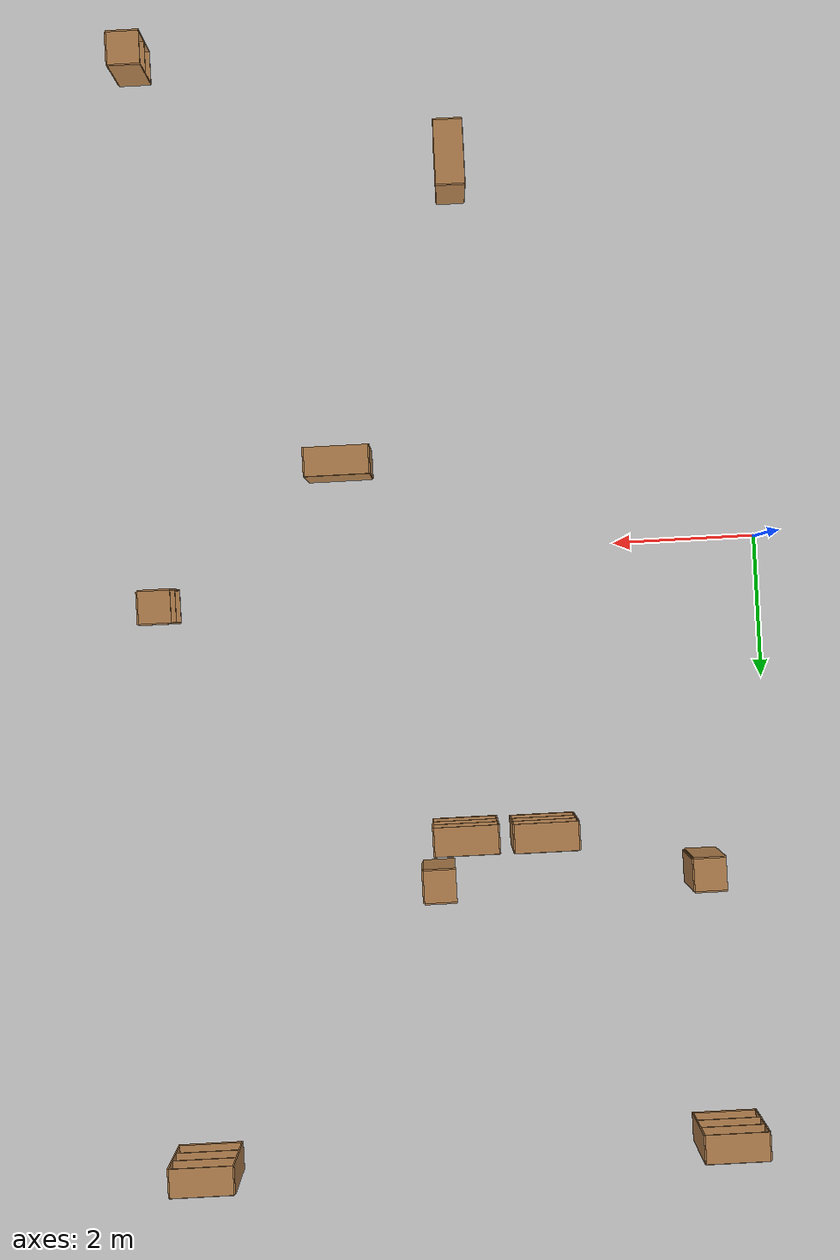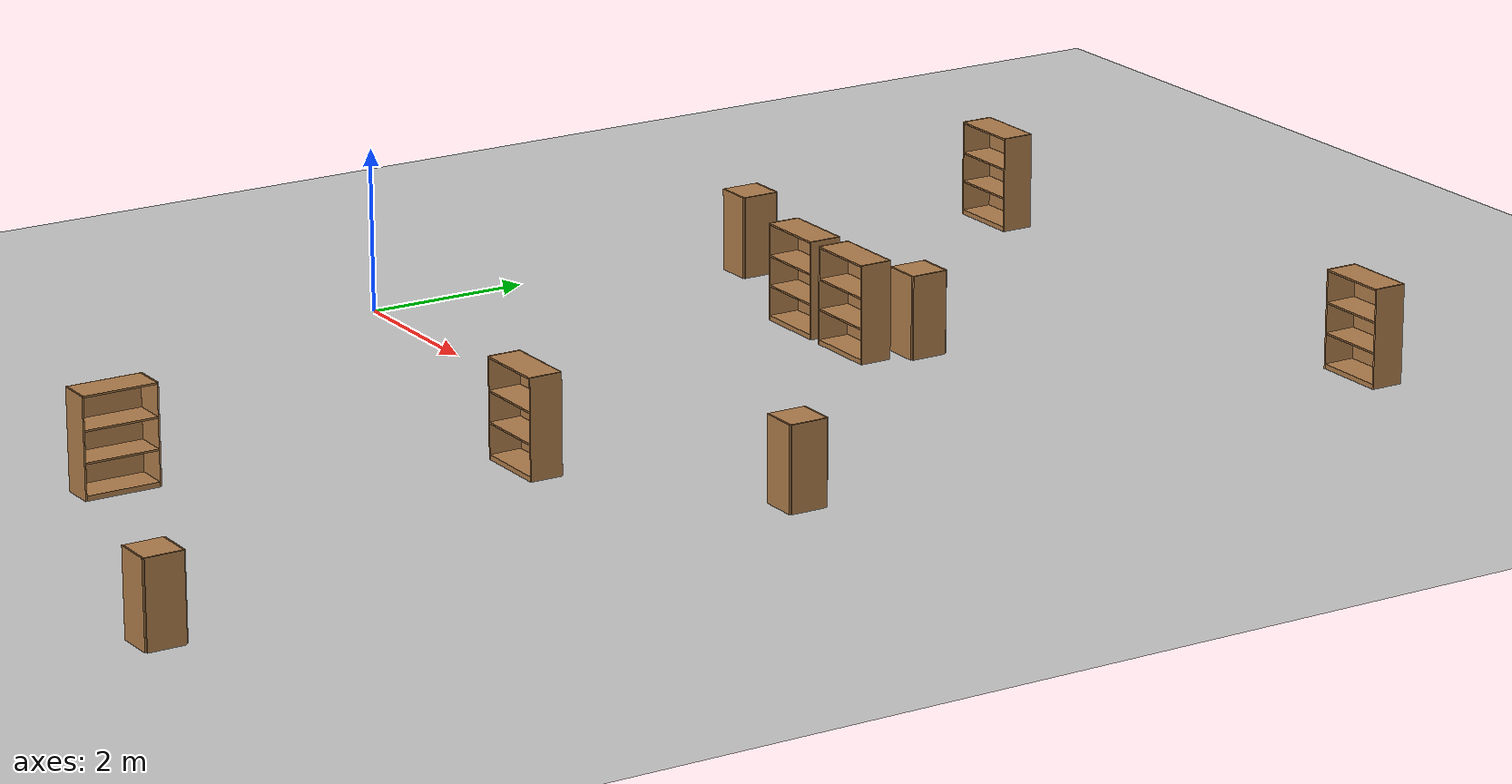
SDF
<sdf version="1.7">
 <world name="default">
  <model name="ground_plane">
   <static>1</static>
   <link name="link">
    <collision name="collision">
     <geometry><plane><normal>0 0 1</normal><size>100 100</size></plane></geometry>
     <surface>
      <contact><collide_bitmask>65535</collide_bitmask></contact>
      <friction><ode><mu>100</mu><mu2>50</mu2></ode></friction>
     </surface>
    </collision>
    <visual name="visual">
     <cast_shadows>0</cast_shadows>
     <geometry><plane><normal>0 0 1</normal><size>100 100</size></plane></geometry>
     <material>
      <script><uri>file://media/materials/scripts/gazebo.material</uri><name>Gazebo/Grey</name></script>
     </material>
    </visual>
   </link>
  </model>
  <model name="bookshelf_1">
   <static>1</static>
   <link name="link">
    <inertial><mass>1</mass></inertial>
    <collision name="back">
     <pose>0 0.005 0.6 0 -0 0</pose>
     <geometry><box><size>0.9 0.01 1.2</size></box></geometry>
    </collision>
    <visual name="visual1">
     <pose>0 0.005 0.6 0 -0 0</pose>
     <geometry><box><size>0.9 0.01 1.2</size></box></geometry>
     <material>
      <script><uri>file://media/materials/scripts/gazebo.material</uri><name>Gazebo/Wood</name></script>
     </material>
    </visual>
    <collision name="left_side">
     <pose>0.45 -0.195 0.6 0 -0 0</pose>
     <geometry><box><size>0.02 0.4 1.2</size></box></geometry>
    </collision>
    <visual name="visual2">
     <pose>0.45 -0.195 0.6 0 -0 0</pose>
     <geometry><box><size>0.02 0.4 1.2</size></box></geometry>
     <material>
      <script><uri>file://media/materials/scripts/gazebo.material</uri><name>Gazebo/Wood</name></script>
     </material>
    </visual>
    <collision name="right_side">
     <pose>-0.45 -0.195 0.6 0 -0 0</pose>
     <geometry><box><size>0.02 0.4 1.2</size></box></geometry>
    </collision>
    <visual name="visual3">
     <pose>-0.45 -0.195 0.6 0 -0 0</pose>
     <geometry><box><size>0.02 0.4 1.2</size></box></geometry>
     <material>
      <script><uri>file://media/materials/scripts/gazebo.material</uri><name>Gazebo/Wood</name></script>
     </material>
    </visual>
    <collision name="bottom">
     <pose>0 -0.195 0.03 0 -0 0</pose>
     <geometry><box><size>0.88 0.4 0.06</size></box></geometry>
    </collision>
    <visual name="visual4">
     <pose>0 -0.195 0.03 0 -0 0</pose>
     <geometry><box><size>0.88 0.4 0.06</size></box></geometry>
     <material>
      <script><uri>file://media/materials/scripts/gazebo.material</uri><name>Gazebo/Wood</name></script>
     </material>
    </visual>
    <collision name="top">
     <pose>0 -0.195 1.19 0 -0 0</pose>
     <geometry><box><size>0.88 0.4 0.02</size></box></geometry>
    </collision>
    <visual name="visual5">
     <pose>0 -0.195 1.19 0 -0 0</pose>
     <geometry><box><size>0.88 0.4 0.02</size></box></geometry>
     <material>
      <script><uri>file://media/materials/scripts/gazebo.material</uri><name>Gazebo/Wood</name></script>
     </material>
    </visual>
    <collision name="low_shelf">
     <pose>0 -0.195 0.43 0 -0 0</pose>
     <geometry><box><size>0.88 0.4 0.02</size></box></geometry>
    </collision>
    <visual name="visual6">
     <pose>0 -0.195 0.43 0 -0 0</pose>
     <geometry><box><size>0.88 0.4 0.02</size></box></geometry>
     <material>
      <script><uri>file://media/materials/scripts/gazebo.material</uri><name>Gazebo/Wood</name></script>
     </material>
    </visual>
    <collision name="high_shelf">
     <pose>0 -0.195 0.8 0 -0 0</pose>
     <geometry><box><size>0.88 0.4 0.02</size></box></geometry>
    </collision>
    <visual name="visual7">
     <pose>0 -0.195 0.8 0 -0 0</pose>
     <geometry><box><size>0.88 0.4 0.02</size></box></geometry>
     <material>
      <script><uri>file://media/materials/scripts/gazebo.material</uri><name>Gazebo/Wood</name></script>
     </material>
    </visual>
   </link>
   <pose>0.86153 8.57982 0 0 -0 0</pose>
  </model>
  <model name="bookshelf_2">
   <static>1</static>
   <link name="link">
    <inertial><mass>1</mass></inertial>
    <collision name="back">
     <pose>0 0.005 0.6 0 -0 0</pose>
     <geometry><box><size>0.9 0.01 1.2</size></box></geometry>
    </collision>
    <visual name="visual1">
     <pose>0 0.005 0.6 0 -0 0</pose>
     <geometry><box><size>0.9 0.01 1.2</size></box></geometry>
     <material>
      <script><uri>file://media/materials/scripts/gazebo.material</uri><name>Gazebo/Wood</name></script>
     </material>
    </visual>
    <collision name="left_side">
     <pose>0.45 -0.195 0.6 0 -0 0</pose>
     <geometry><box><size>0.02 0.4 1.2</size></box></geometry>
    </collision>
    <visual name="visual2">
     <pose>0.45 -0.195 0.6 0 -0 0</pose>
     <geometry><box><size>0.02 0.4 1.2</size></box></geometry>
     <material>
      <script><uri>file://media/materials/scripts/gazebo.material</uri><name>Gazebo/Wood</name></script>
     </material>
    </visual>
    <collision name="right_side">
     <pose>-0.45 -0.195 0.6 0 -0 0</pose>
     <geometry><box><size>0.02 0.4 1.2</size></box></geometry>
    </collision>
    <visual name="visual3">
     <pose>-0.45 -0.195 0.6 0 -0 0</pose>
     <geometry><box><size>0.02 0.4 1.2</size></box></geometry>
     <material>
      <script><uri>file://media/materials/scripts/gazebo.material</uri><name>Gazebo/Wood</name></script>
     </material>
    </visual>
    <collision name="bottom">
     <pose>0 -0.195 0.03 0 -0 0</pose>
     <geometry><box><size>0.88 0.4 0.06</size></box></geometry>
    </collision>
    <visual name="visual4">
     <pose>0 -0.195 0.03 0 -0 0</pose>
     <geometry><box><size>0.88 0.4 0.06</size></box></geometry>
     <material>
      <script><uri>file://media/materials/scripts/gazebo.material</uri><name>Gazebo/Wood</name></script>
     </material>
    </visual>
    <collision name="top">
     <pose>0 -0.195 1.19 0 -0 0</pose>
     <geometry><box><size>0.88 0.4 0.02</size></box></geometry>
    </collision>
    <visual name="visual5">
     <pose>0 -0.195 1.19 0 -0 0</pose>
     <geometry><box><size>0.88 0.4 0.02</size></box></geometry>
     <material>
      <script><uri>file://media/materials/scripts/gazebo.material</uri><name>Gazebo/Wood</name></script>
     </material>
    </visual>
    <collision name="low_shelf">
     <pose>0 -0.195 0.43 0 -0 0</pose>
     <geometry><box><size>0.88 0.4 0.02</size></box></geometry>
    </collision>
    <visual name="visual6">
     <pose>0 -0.195 0.43 0 -0 0</pose>
     <geometry><box><size>0.88 0.4 0.02</size></box></geometry>
     <material>
      <script><uri>file://media/materials/scripts/gazebo.material</uri><name>Gazebo/Wood</name></script>
     </material>
    </visual>
    <collision name="high_shelf">
     <pose>0 -0.195 0.8 0 -0 0</pose>
     <geometry><box><size>0.88 0.4 0.02</size></box></geometry>
    </collision>
    <visual name="visual7">
     <pose>0 -0.195 0.8 0 -0 0</pose>
     <geometry><box><size>0.88 0.4 0.02</size></box></geometry>
     <material>
      <script><uri>file://media/materials/scripts/gazebo.material</uri><name>Gazebo/Wood</name></script>
     </material>
    </visual>
   </link>
   <pose>3.24095 4.19598 0 0 -0 0</pose>
  </model>
  <model name="bookshelf_3">
   <static>1</static>
   <link name="link">
    <inertial><mass>1</mass></inertial>
    <collision name="back">
     <pose>0 0.005 0.6 0 -0 0</pose>
     <geometry><box><size>0.9 0.01 1.2</size></box></geometry>
    </collision>
    <visual name="visual1">
     <pose>0 0.005 0.6 0 -0 0</pose>
     <geometry><box><size>0.9 0.01 1.2</size></box></geometry>
     <material>
      <script><uri>file://media/materials/scripts/gazebo.material</uri><name>Gazebo/Wood</name></script>
     </material>
    </visual>
    <collision name="left_side">
     <pose>0.45 -0.195 0.6 0 -0 0</pose>
     <geometry><box><size>0.02 0.4 1.2</size></box></geometry>
    </collision>
    <visual name="visual2">
     <pose>0.45 -0.195 0.6 0 -0 0</pose>
     <geometry><box><size>0.02 0.4 1.2</size></box></geometry>
     <material>
      <script><uri>file://media/materials/scripts/gazebo.material</uri><name>Gazebo/Wood</name></script>
     </material>
    </visual>
    <collision name="right_side">
     <pose>-0.45 -0.195 0.6 0 -0 0</pose>
     <geometry><box><size>0.02 0.4 1.2</size></box></geometry>
    </collision>
    <visual name="visual3">
     <pose>-0.45 -0.195 0.6 0 -0 0</pose>
     <geometry><box><size>0.02 0.4 1.2</size></box></geometry>
     <material>
      <script><uri>file://media/materials/scripts/gazebo.material</uri><name>Gazebo/Wood</name></script>
     </material>
    </visual>
    <collision name="bottom">
     <pose>0 -0.195 0.03 0 -0 0</pose>
     <geometry><box><size>0.88 0.4 0.06</size></box></geometry>
    </collision>
    <visual name="visual4">
     <pose>0 -0.195 0.03 0 -0 0</pose>
     <geometry><box><size>0.88 0.4 0.06</size></box></geometry>
     <material>
      <script><uri>file://media/materials/scripts/gazebo.material</uri><name>Gazebo/Wood</name></script>
     </material>
    </visual>
    <collision name="top">
     <pose>0 -0.195 1.19 0 -0 0</pose>
     <geometry><box><size>0.88 0.4 0.02</size></box></geometry>
    </collision>
    <visual name="visual5">
     <pose>0 -0.195 1.19 0 -0 0</pose>
     <geometry><box><size>0.88 0.4 0.02</size></box></geometry>
     <material>
      <script><uri>file://media/materials/scripts/gazebo.material</uri><name>Gazebo/Wood</name></script>
     </material>
    </visual>
    <collision name="low_shelf">
     <pose>0 -0.195 0.43 0 -0 0</pose>
     <geometry><box><size>0.88 0.4 0.02</size></box></geometry>
    </collision>
    <visual name="visual6">
     <pose>0 -0.195 0.43 0 -0 0</pose>
     <geometry><box><size>0.88 0.4 0.02</size></box></geometry>
     <material>
      <script><uri>file://media/materials/scripts/gazebo.material</uri><name>Gazebo/Wood</name></script>
     </material>
    </visual>
    <collision name="high_shelf">
     <pose>0 -0.195 0.8 0 -0 0</pose>
     <geometry><box><size>0.88 0.4 0.02</size></box></geometry>
    </collision>
    <visual name="visual7">
     <pose>0 -0.195 0.8 0 -0 0</pose>
     <geometry><box><size>0.88 0.4 0.02</size></box></geometry>
     <material>
      <script><uri>file://media/materials/scripts/gazebo.material</uri><name>Gazebo/Wood</name></script>
     </material>
    </visual>
   </link>
   <pose>4.33864 4.1857 0 0 -0 0</pose>
  </model>
  <model name="bookshelf_4">
   <static>1</static>
   <link name="link">
    <inertial><mass>1</mass></inertial>
    <collision name="back">
     <pose>0 0.005 0.6 0 -0 0</pose>
     <geometry><box><size>0.9 0.01 1.2</size></box></geometry>
    </collision>
    <visual name="visual1">
     <pose>0 0.005 0.6 0 -0 0</pose>
     <geometry><box><size>0.9 0.01 1.2</size></box></geometry>
     <material>
      <script><uri>file://media/materials/scripts/gazebo.material</uri><name>Gazebo/Wood</name></script>
     </material>
    </visual>
    <collision name="left_side">
     <pose>0.45 -0.195 0.6 0 -0 0</pose>
     <geometry><box><size>0.02 0.4 1.2</size></box></geometry>
    </collision>
    <visual name="visual2">
     <pose>0.45 -0.195 0.6 0 -0 0</pose>
     <geometry><box><size>0.02 0.4 1.2</size></box></geometry>
     <material>
      <script><uri>file://media/materials/scripts/gazebo.material</uri><name>Gazebo/Wood</name></script>
     </material>
    </visual>
    <collision name="right_side">
     <pose>-0.45 -0.195 0.6 0 -0 0</pose>
     <geometry><box><size>0.02 0.4 1.2</size></box></geometry>
    </collision>
    <visual name="visual3">
     <pose>-0.45 -0.195 0.6 0 -0 0</pose>
     <geometry><box><size>0.02 0.4 1.2</size></box></geometry>
     <material>
      <script><uri>file://media/materials/scripts/gazebo.material</uri><name>Gazebo/Wood</name></script>
     </material>
    </visual>
    <collision name="bottom">
     <pose>0 -0.195 0.03 0 -0 0</pose>
     <geometry><box><size>0.88 0.4 0.06</size></box></geometry>
    </collision>
    <visual name="visual4">
     <pose>0 -0.195 0.03 0 -0 0</pose>
     <geometry><box><size>0.88 0.4 0.06</size></box></geometry>
     <material>
      <script><uri>file://media/materials/scripts/gazebo.material</uri><name>Gazebo/Wood</name></script>
     </material>
    </visual>
    <collision name="top">
     <pose>0 -0.195 1.19 0 -0 0</pose>
     <geometry><box><size>0.88 0.4 0.02</size></box></geometry>
    </collision>
    <visual name="visual5">
     <pose>0 -0.195 1.19 0 -0 0</pose>
     <geometry><box><size>0.88 0.4 0.02</size></box></geometry>
     <material>
      <script><uri>file://media/materials/scripts/gazebo.material</uri><name>Gazebo/Wood</name></script>
     </material>
    </visual>
    <collision name="low_shelf">
     <pose>0 -0.195 0.43 0 -0 0</pose>
     <geometry><box><size>0.88 0.4 0.02</size></box></geometry>
    </collision>
    <visual name="visual6">
     <pose>0 -0.195 0.43 0 -0 0</pose>
     <geometry><box><size>0.88 0.4 0.02</size></box></geometry>
     <material>
      <script><uri>file://media/materials/scripts/gazebo.material</uri><name>Gazebo/Wood</name></script>
     </material>
    </visual>
    <collision name="high_shelf">
     <pose>0 -0.195 0.8 0 -0 0</pose>
     <geometry><box><size>0.88 0.4 0.02</size></box></geometry>
    </collision>
    <visual name="visual7">
     <pose>0 -0.195 0.8 0 -0 0</pose>
     <geometry><box><size>0.88 0.4 0.02</size></box></geometry>
     <material>
      <script><uri>file://media/materials/scripts/gazebo.material</uri><name>Gazebo/Wood</name></script>
     </material>
    </visual>
   </link>
   <pose>5.83992 -1.10572 0 0 -0 0</pose>
  </model>
  <model name="cabinet_3">
   <static>1</static>
   <link name="cabinet_bottom_plate">
    <inertial>
     <pose>0 0 -1 0 -0 0</pose>
     <inertia><ixx>2.05</ixx><ixy>0</ixy><ixz>0</ixz><iyy>2.05</iyy><iyz>0</iyz><izz>2.05</izz></inertia>
     <mass>25</mass>
    </inertial>
    <collision name="cabinet_bottom_plate_geom">
     <pose>0 0 0.01 0 -0 0</pose>
     <geometry><box><size>0.45 0.45 0.02</size></box></geometry>
    </collision>
    <visual name="cabinet_bottom_plate_geom_visual">
     <pose>0 0 0.01 0 -0 0</pose>
     <geometry><box><size>0.45 0.45 0.02</size></box></geometry>
     <material>
      <script><uri>file://media/materials/scripts/gazebo.material</uri><name>Gazebo/Wood</name></script>
     </material>
    </visual>
    <collision name="cabinet_bottom_plate_geom_cabinet_back_plate">
     <pose>0.235 0 0.51 0 -0 0</pose>
     <geometry><box><size>0.02 0.45 1.02</size></box></geometry>
    </collision>
    <visual name="cabinet_bottom_plate_geom_cabinet_back_plate_visual">
     <pose>0.235 0 0.51 0 -0 0</pose>
     <geometry><box><size>0.02 0.45 1.02</size></box></geometry>
     <material>
      <script><uri>file://media/materials/scripts/gazebo.material</uri><name>Gazebo/Wood</name></script>
     </material>
    </visual>
    <collision name="cabinet_bottom_plate_geom_cabinet_left_plate">
     <pose>0 0.235 0.51 0 -0 0</pose>
     <geometry><box><size>0.45 0.02 1.02</size></box></geometry>
    </collision>
    <visual name="cabinet_bottom_plate_geom_cabinet_left_plate_visual">
     <pose>0 0.235 0.51 0 -0 0</pose>
     <geometry><box><size>0.45 0.02 1.02</size></box></geometry>
     <material>
      <script><uri>file://media/materials/scripts/gazebo.material</uri><name>Gazebo/Wood</name></script>
     </material>
    </visual>
    <collision name="cabinet_bottom_plate_geom_cabinet_middle_plate">
     <pose>0 0 0.51 0 -0 0</pose>
     <geometry><box><size>0.45 0.45 0.02</size></box></geometry>
    </collision>
    <visual name="cabinet_bottom_plate_geom_cabinet_middle_plate_visual">
     <pose>0 0 0.51 0 -0 0</pose>
     <geometry><box><size>0.45 0.45 0.02</size></box></geometry>
     <material>
      <script><uri>file://media/materials/scripts/gazebo.material</uri><name>Gazebo/Wood</name></script>
     </material>
    </visual>
    <collision name="cabinet_bottom_plate_geom_cabinet_right_plate">
     <pose>0 -0.235 0.51 0 -0 0</pose>
     <geometry><box><size>0.45 0.02 1.02</size></box></geometry>
    </collision>
    <visual name="cabinet_bottom_plate_geom_cabinet_right_plate_visual">
     <pose>0 -0.235 0.51 0 -0 0</pose>
     <geometry><box><size>0.45 0.02 1.02</size></box></geometry>
     <material>
      <script><uri>file://media/materials/scripts/gazebo.material</uri><name>Gazebo/Wood</name></script>
     </material>
    </visual>
    <collision name="cabinet_bottom_plate_geom_cabinet_top_plate">
     <pose>0 0 1.01 0 -0 0</pose>
     <geometry><box><size>0.45 0.45 0.02</size></box></geometry>
    </collision>
    <visual name="cabinet_bottom_plate_geom_cabinet_top_plate_visual">
     <pose>0 0 1.01 0 -0 0</pose>
     <geometry><box><size>0.45 0.45 0.02</size></box></geometry>
     <material>
      <script><uri>file://media/materials/scripts/gazebo.material</uri><name>Gazebo/Wood</name></script>
     </material>
    </visual>
   </link>
   <pose>8.47129 -7.14675 0 0 -0 0</pose>
  </model>
  <model name="bookshelf_7">
   <static>1</static>
   <link name="link">
    <inertial><mass>1</mass></inertial>
    <collision name="back">
     <pose>0 0.005 0.6 0 -0 0</pose>
     <geometry><box><size>0.9 0.01 1.2</size></box></geometry>
    </collision>
    <visual name="visual1">
     <pose>0 0.005 0.6 0 -0 0</pose>
     <geometry><box><size>0.9 0.01 1.2</size></box></geometry>
     <material>
      <script><uri>file://media/materials/scripts/gazebo.material</uri><name>Gazebo/Wood</name></script>
     </material>
    </visual>
    <collision name="left_side">
     <pose>0.45 -0.195 0.6 0 -0 0</pose>
     <geometry><box><size>0.02 0.4 1.2</size></box></geometry>
    </collision>
    <visual name="visual2">
     <pose>0.45 -0.195 0.6 0 -0 0</pose>
     <geometry><box><size>0.02 0.4 1.2</size></box></geometry>
     <material>
      <script><uri>file://media/materials/scripts/gazebo.material</uri><name>Gazebo/Wood</name></script>
     </material>
    </visual>
    <collision name="right_side">
     <pose>-0.45 -0.195 0.6 0 -0 0</pose>
     <geometry><box><size>0.02 0.4 1.2</size></box></geometry>
    </collision>
    <visual name="visual3">
     <pose>-0.45 -0.195 0.6 0 -0 0</pose>
     <geometry><box><size>0.02 0.4 1.2</size></box></geometry>
     <material>
      <script><uri>file://media/materials/scripts/gazebo.material</uri><name>Gazebo/Wood</name></script>
     </material>
    </visual>
    <collision name="bottom">
     <pose>0 -0.195 0.03 0 -0 0</pose>
     <geometry><box><size>0.88 0.4 0.06</size></box></geometry>
    </collision>
    <visual name="visual4">
     <pose>0 -0.195 0.03 0 -0 0</pose>
     <geometry><box><size>0.88 0.4 0.06</size></box></geometry>
     <material>
      <script><uri>file://media/materials/scripts/gazebo.material</uri><name>Gazebo/Wood</name></script>
     </material>
    </visual>
    <collision name="top">
     <pose>0 -0.195 1.19 0 -0 0</pose>
     <geometry><box><size>0.88 0.4 0.02</size></box></geometry>
    </collision>
    <visual name="visual5">
     <pose>0 -0.195 1.19 0 -0 0</pose>
     <geometry><box><size>0.88 0.4 0.02</size></box></geometry>
     <material>
      <script><uri>file://media/materials/scripts/gazebo.material</uri><name>Gazebo/Wood</name></script>
     </material>
    </visual>
    <collision name="low_shelf">
     <pose>0 -0.195 0.43 0 -0 0</pose>
     <geometry><box><size>0.88 0.4 0.02</size></box></geometry>
    </collision>
    <visual name="visual6">
     <pose>0 -0.195 0.43 0 -0 0</pose>
     <geometry><box><size>0.88 0.4 0.02</size></box></geometry>
     <material>
      <script><uri>file://media/materials/scripts/gazebo.material</uri><name>Gazebo/Wood</name></script>
     </material>
    </visual>
    <collision name="high_shelf">
     <pose>0 -0.195 0.8 0 -0 0</pose>
     <geometry><box><size>0.88 0.4 0.02</size></box></geometry>
    </collision>
    <visual name="visual7">
     <pose>0 -0.195 0.8 0 -0 0</pose>
     <geometry><box><size>0.88 0.4 0.02</size></box></geometry>
     <material>
      <script><uri>file://media/materials/scripts/gazebo.material</uri><name>Gazebo/Wood</name></script>
     </material>
    </visual>
   </link>
   <pose>3.87915 -5.43116 0 0 -0 1.56849</pose>
  </model>
  <model name="cabinet_4">
   <static>1</static>
   <link name="cabinet_bottom_plate">
    <inertial>
     <pose>0 0 -1 0 -0 0</pose>
     <inertia><ixx>2.05</ixx><ixy>0</ixy><ixz>0</ixz><iyy>2.05</iyy><iyz>0</iyz><izz>2.05</izz></inertia>
     <mass>25</mass>
    </inertial>
    <collision name="cabinet_bottom_plate_geom">
     <pose>0 0 0.01 0 -0 0</pose>
     <geometry><box><size>0.45 0.45 0.02</size></box></geometry>
    </collision>
    <visual name="cabinet_bottom_plate_geom_visual">
     <pose>0 0 0.01 0 -0 0</pose>
     <geometry><box><size>0.45 0.45 0.02</size></box></geometry>
     <material>
      <script><uri>file://media/materials/scripts/gazebo.material</uri><name>Gazebo/Wood</name></script>
     </material>
    </visual>
    <collision name="cabinet_bottom_plate_geom_cabinet_back_plate">
     <pose>0.235 0 0.51 0 -0 0</pose>
     <geometry><box><size>0.02 0.45 1.02</size></box></geometry>
    </collision>
    <visual name="cabinet_bottom_plate_geom_cabinet_back_plate_visual">
     <pose>0.235 0 0.51 0 -0 0</pose>
     <geometry><box><size>0.02 0.45 1.02</size></box></geometry>
     <material>
      <script><uri>file://media/materials/scripts/gazebo.material</uri><name>Gazebo/Wood</name></script>
     </material>
    </visual>
    <collision name="cabinet_bottom_plate_geom_cabinet_left_plate">
     <pose>0 0.235 0.51 0 -0 0</pose>
     <geometry><box><size>0.45 0.02 1.02</size></box></geometry>
    </collision>
    <visual name="cabinet_bottom_plate_geom_cabinet_left_plate_visual">
     <pose>0 0.235 0.51 0 -0 0</pose>
     <geometry><box><size>0.45 0.02 1.02</size></box></geometry>
     <material>
      <script><uri>file://media/materials/scripts/gazebo.material</uri><name>Gazebo/Wood</name></script>
     </material>
    </visual>
    <collision name="cabinet_bottom_plate_geom_cabinet_middle_plate">
     <pose>0 0 0.51 0 -0 0</pose>
     <geometry><box><size>0.45 0.45 0.02</size></box></geometry>
    </collision>
    <visual name="cabinet_bottom_plate_geom_cabinet_middle_plate_visual">
     <pose>0 0 0.51 0 -0 0</pose>
     <geometry><box><size>0.45 0.45 0.02</size></box></geometry>
     <material>
      <script><uri>file://media/materials/scripts/gazebo.material</uri><name>Gazebo/Wood</name></script>
     </material>
    </visual>
    <collision name="cabinet_bottom_plate_geom_cabinet_right_plate">
     <pose>0 -0.235 0.51 0 -0 0</pose>
     <geometry><box><size>0.45 0.02 1.02</size></box></geometry>
    </collision>
    <visual name="cabinet_bottom_plate_geom_cabinet_right_plate_visual">
     <pose>0 -0.235 0.51 0 -0 0</pose>
     <geometry><box><size>0.45 0.02 1.02</size></box></geometry>
     <material>
      <script><uri>file://media/materials/scripts/gazebo.material</uri><name>Gazebo/Wood</name></script>
     </material>
    </visual>
    <collision name="cabinet_bottom_plate_geom_cabinet_top_plate">
     <pose>0 0 1.01 0 -0 0</pose>
     <geometry><box><size>0.45 0.45 0.02</size></box></geometry>
    </collision>
    <visual name="cabinet_bottom_plate_geom_cabinet_top_plate_visual">
     <pose>0 0 1.01 0 -0 0</pose>
     <geometry><box><size>0.45 0.45 0.02</size></box></geometry>
     <material>
      <script><uri>file://media/materials/scripts/gazebo.material</uri><name>Gazebo/Wood</name></script>
     </material>
    </visual>
   </link>
   <pose>8.45571 0.567737 0 0 -0 0</pose>
  </model>
  <model name="bookshelf_8">
   <static>1</static>
   <link name="link">
    <inertial><mass>1</mass></inertial>
    <collision name="back">
     <pose>0 0.005 0.6 0 -0 0</pose>
     <geometry><box><size>0.9 0.01 1.2</size></box></geometry>
    </collision>
    <visual name="visual1">
     <pose>0 0.005 0.6 0 -0 0</pose>
     <geometry><box><size>0.9 0.01 1.2</size></box></geometry>
     <material>
      <script><uri>file://media/materials/scripts/gazebo.material</uri><name>Gazebo/Wood</name></script>
     </material>
    </visual>
    <collision name="left_side">
     <pose>0.45 -0.195 0.6 0 -0 0</pose>
     <geometry><box><size>0.02 0.4 1.2</size></box></geometry>
    </collision>
    <visual name="visual2">
     <pose>0.45 -0.195 0.6 0 -0 0</pose>
     <geometry><box><size>0.02 0.4 1.2</size></box></geometry>
     <material>
      <script><uri>file://media/materials/scripts/gazebo.material</uri><name>Gazebo/Wood</name></script>
     </material>
    </visual>
    <collision name="right_side">
     <pose>-0.45 -0.195 0.6 0 -0 0</pose>
     <geometry><box><size>0.02 0.4 1.2</size></box></geometry>
    </collision>
    <visual name="visual3">
     <pose>-0.45 -0.195 0.6 0 -0 0</pose>
     <geometry><box><size>0.02 0.4 1.2</size></box></geometry>
     <material>
      <script><uri>file://media/materials/scripts/gazebo.material</uri><name>Gazebo/Wood</name></script>
     </material>
    </visual>
    <collision name="bottom">
     <pose>0 -0.195 0.03 0 -0 0</pose>
     <geometry><box><size>0.88 0.4 0.06</size></box></geometry>
    </collision>
    <visual name="visual4">
     <pose>0 -0.195 0.03 0 -0 0</pose>
     <geometry><box><size>0.88 0.4 0.06</size></box></geometry>
     <material>
      <script><uri>file://media/materials/scripts/gazebo.material</uri><name>Gazebo/Wood</name></script>
     </material>
    </visual>
    <collision name="top">
     <pose>0 -0.195 1.19 0 -0 0</pose>
     <geometry><box><size>0.88 0.4 0.02</size></box></geometry>
    </collision>
    <visual name="visual5">
     <pose>0 -0.195 1.19 0 -0 0</pose>
     <geometry><box><size>0.88 0.4 0.02</size></box></geometry>
     <material>
      <script><uri>file://media/materials/scripts/gazebo.material</uri><name>Gazebo/Wood</name></script>
     </material>
    </visual>
    <collision name="low_shelf">
     <pose>0 -0.195 0.43 0 -0 0</pose>
     <geometry><box><size>0.88 0.4 0.02</size></box></geometry>
    </collision>
    <visual name="visual6">
     <pose>0 -0.195 0.43 0 -0 0</pose>
     <geometry><box><size>0.88 0.4 0.02</size></box></geometry>
     <material>
      <script><uri>file://media/materials/scripts/gazebo.material</uri><name>Gazebo/Wood</name></script>
     </material>
    </visual>
    <collision name="high_shelf">
     <pose>0 -0.195 0.8 0 -0 0</pose>
     <geometry><box><size>0.88 0.4 0.02</size></box></geometry>
    </collision>
    <visual name="visual7">
     <pose>0 -0.195 0.8 0 -0 0</pose>
     <geometry><box><size>0.88 0.4 0.02</size></box></geometry>
     <material>
      <script><uri>file://media/materials/scripts/gazebo.material</uri><name>Gazebo/Wood</name></script>
     </material>
    </visual>
   </link>
   <pose>8.21042 8.64675 0 0 -0 0</pose>
  </model>
  <model name="cabinet_5">
   <static>1</static>
   <link name="cabinet_bottom_plate">
    <inertial>
     <pose>0 0 -1 0 -0 0</pose>
     <inertia><ixx>2.05</ixx><ixy>0</ixy><ixz>0</ixz><iyy>2.05</iyy><iyz>0</iyz><izz>2.05</izz></inertia>
     <mass>25</mass>
    </inertial>
    <collision name="cabinet_bottom_plate_geom">
     <pose>0 0 0.01 0 -0 0</pose>
     <geometry><box><size>0.45 0.45 0.02</size></box></geometry>
    </collision>
    <visual name="cabinet_bottom_plate_geom_visual">
     <pose>0 0 0.01 0 -0 0</pose>
     <geometry><box><size>0.45 0.45 0.02</size></box></geometry>
     <material>
      <script><uri>file://media/materials/scripts/gazebo.material</uri><name>Gazebo/Wood</name></script>
     </material>
    </visual>
    <collision name="cabinet_bottom_plate_geom_cabinet_back_plate">
     <pose>0.235 0 0.51 0 -0 0</pose>
     <geometry><box><size>0.02 0.45 1.02</size></box></geometry>
    </collision>
    <visual name="cabinet_bottom_plate_geom_cabinet_back_plate_visual">
     <pose>0.235 0 0.51 0 -0 0</pose>
     <geometry><box><size>0.02 0.45 1.02</size></box></geometry>
     <material>
      <script><uri>file://media/materials/scripts/gazebo.material</uri><name>Gazebo/Wood</name></script>
     </material>
    </visual>
    <collision name="cabinet_bottom_plate_geom_cabinet_left_plate">
     <pose>0 0.235 0.51 0 -0 0</pose>
     <geometry><box><size>0.45 0.02 1.02</size></box></geometry>
    </collision>
    <visual name="cabinet_bottom_plate_geom_cabinet_left_plate_visual">
     <pose>0 0.235 0.51 0 -0 0</pose>
     <geometry><box><size>0.45 0.02 1.02</size></box></geometry>
     <material>
      <script><uri>file://media/materials/scripts/gazebo.material</uri><name>Gazebo/Wood</name></script>
     </material>
    </visual>
    <collision name="cabinet_bottom_plate_geom_cabinet_middle_plate">
     <pose>0 0 0.51 0 -0 0</pose>
     <geometry><box><size>0.45 0.45 0.02</size></box></geometry>
    </collision>
    <visual name="cabinet_bottom_plate_geom_cabinet_middle_plate_visual">
     <pose>0 0 0.51 0 -0 0</pose>
     <geometry><box><size>0.45 0.45 0.02</size></box></geometry>
     <material>
      <script><uri>file://media/materials/scripts/gazebo.material</uri><name>Gazebo/Wood</name></script>
     </material>
    </visual>
    <collision name="cabinet_bottom_plate_geom_cabinet_right_plate">
     <pose>0 -0.235 0.51 0 -0 0</pose>
     <geometry><box><size>0.45 0.02 1.02</size></box></geometry>
    </collision>
    <visual name="cabinet_bottom_plate_geom_cabinet_right_plate_visual">
     <pose>0 -0.235 0.51 0 -0 0</pose>
     <geometry><box><size>0.45 0.02 1.02</size></box></geometry>
     <material>
      <script><uri>file://media/materials/scripts/gazebo.material</uri><name>Gazebo/Wood</name></script>
     </material>
    </visual>
    <collision name="cabinet_bottom_plate_geom_cabinet_top_plate">
     <pose>0 0 1.01 0 -0 0</pose>
     <geometry><box><size>0.45 0.45 0.02</size></box></geometry>
    </collision>
    <visual name="cabinet_bottom_plate_geom_cabinet_top_plate_visual">
     <pose>0 0 1.01 0 -0 0</pose>
     <geometry><box><size>0.45 0.45 0.02</size></box></geometry>
     <material>
      <script><uri>file://media/materials/scripts/gazebo.material</uri><name>Gazebo/Wood</name></script>
     </material>
    </visual>
   </link>
   <pose>4.73393 4.61719 0 0 -0 0</pose>
  </model>
  <model name="cabinet_6">
   <static>1</static>
   <link name="cabinet_bottom_plate">
    <inertial>
     <pose>0 0 -1 0 -0 0</pose>
     <inertia><ixx>2.05</ixx><ixy>0</ixy><ixz>0</ixz><iyy>2.05</iyy><iyz>0</iyz><izz>2.05</izz></inertia>
     <mass>25</mass>
    </inertial>
    <collision name="cabinet_bottom_plate_geom">
     <pose>0 0 0.01 0 -0 0</pose>
     <geometry><box><size>0.45 0.45 0.02</size></box></geometry>
    </collision>
    <visual name="cabinet_bottom_plate_geom_visual">
     <pose>0 0 0.01 0 -0 0</pose>
     <geometry><box><size>0.45 0.45 0.02</size></box></geometry>
     <material>
      <script><uri>file://media/materials/scripts/gazebo.material</uri><name>Gazebo/Wood</name></script>
     </material>
    </visual>
    <collision name="cabinet_bottom_plate_geom_cabinet_back_plate">
     <pose>0.235 0 0.51 0 -0 0</pose>
     <geometry><box><size>0.02 0.45 1.02</size></box></geometry>
    </collision>
    <visual name="cabinet_bottom_plate_geom_cabinet_back_plate_visual">
     <pose>0.235 0 0.51 0 -0 0</pose>
     <geometry><box><size>0.02 0.45 1.02</size></box></geometry>
     <material>
      <script><uri>file://media/materials/scripts/gazebo.material</uri><name>Gazebo/Wood</name></script>
     </material>
    </visual>
    <collision name="cabinet_bottom_plate_geom_cabinet_left_plate">
     <pose>0 0.235 0.51 0 -0 0</pose>
     <geometry><box><size>0.45 0.02 1.02</size></box></geometry>
    </collision>
    <visual name="cabinet_bottom_plate_geom_cabinet_left_plate_visual">
     <pose>0 0.235 0.51 0 -0 0</pose>
     <geometry><box><size>0.45 0.02 1.02</size></box></geometry>
     <material>
      <script><uri>file://media/materials/scripts/gazebo.material</uri><name>Gazebo/Wood</name></script>
     </material>
    </visual>
    <collision name="cabinet_bottom_plate_geom_cabinet_middle_plate">
     <pose>0 0 0.51 0 -0 0</pose>
     <geometry><box><size>0.45 0.45 0.02</size></box></geometry>
    </collision>
    <visual name="cabinet_bottom_plate_geom_cabinet_middle_plate_visual">
     <pose>0 0 0.51 0 -0 0</pose>
     <geometry><box><size>0.45 0.45 0.02</size></box></geometry>
     <material>
      <script><uri>file://media/materials/scripts/gazebo.material</uri><name>Gazebo/Wood</name></script>
     </material>
    </visual>
    <collision name="cabinet_bottom_plate_geom_cabinet_right_plate">
     <pose>0 -0.235 0.51 0 -0 0</pose>
     <geometry><box><size>0.45 0.02 1.02</size></box></geometry>
    </collision>
    <visual name="cabinet_bottom_plate_geom_cabinet_right_plate_visual">
     <pose>0 -0.235 0.51 0 -0 0</pose>
     <geometry><box><size>0.45 0.02 1.02</size></box></geometry>
     <material>
      <script><uri>file://media/materials/scripts/gazebo.material</uri><name>Gazebo/Wood</name></script>
     </material>
    </visual>
    <collision name="cabinet_bottom_plate_geom_cabinet_top_plate">
     <pose>0 0 1.01 0 -0 0</pose>
     <geometry><box><size>0.45 0.45 0.02</size></box></geometry>
    </collision>
    <visual name="cabinet_bottom_plate_geom_cabinet_top_plate_visual">
     <pose>0 0 1.01 0 -0 0</pose>
     <geometry><box><size>0.45 0.45 0.02</size></box></geometry>
     <material>
      <script><uri>file://media/materials/scripts/gazebo.material</uri><name>Gazebo/Wood</name></script>
     </material>
    </visual>
   </link>
   <pose>1.00968 4.65408 0 0 -0 0</pose>
  </model>
 </world>
</sdf>
